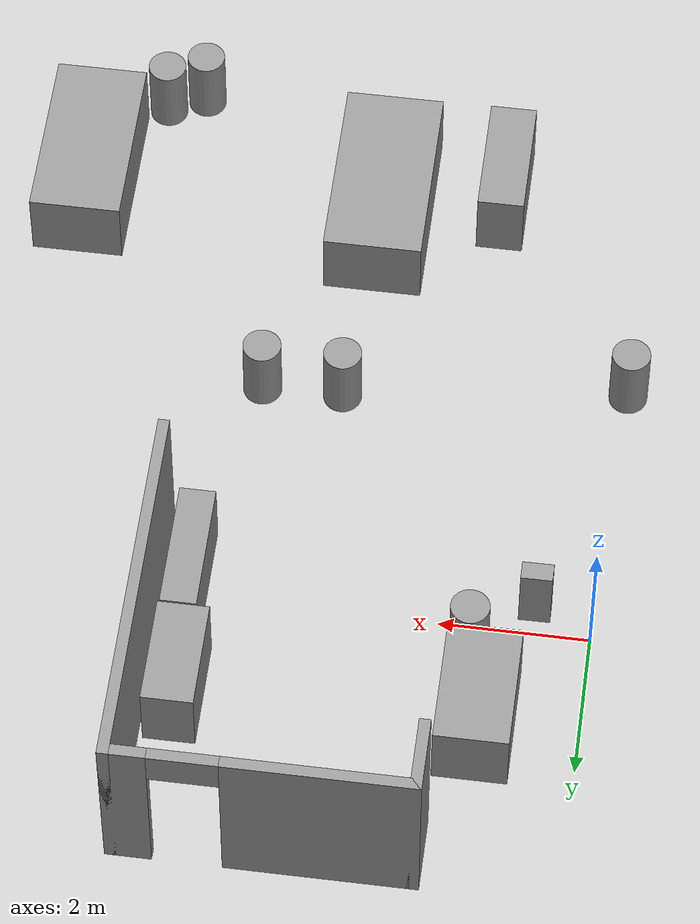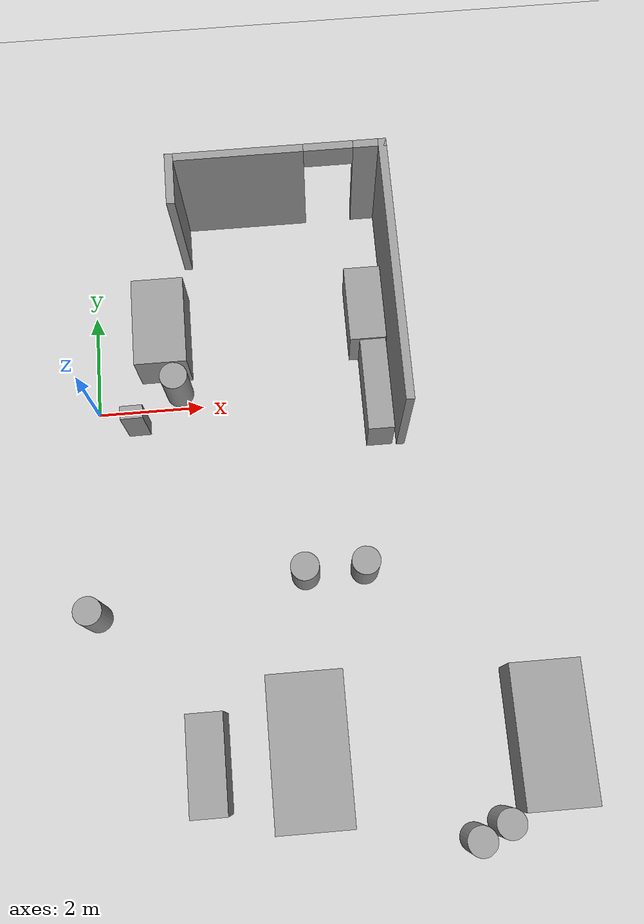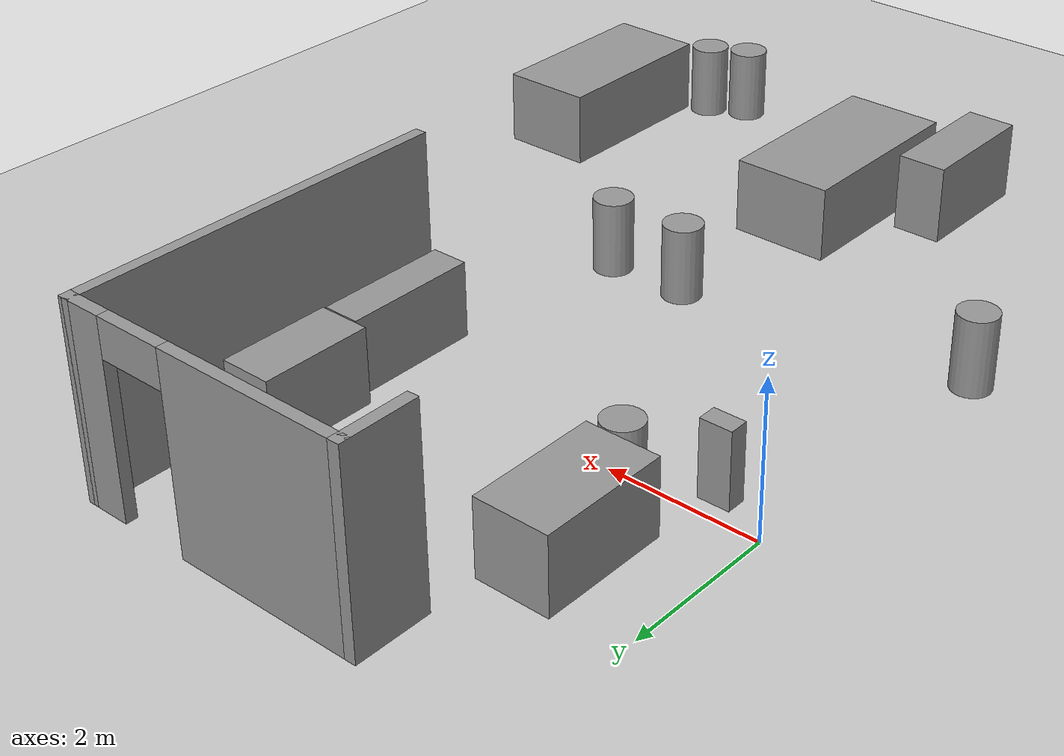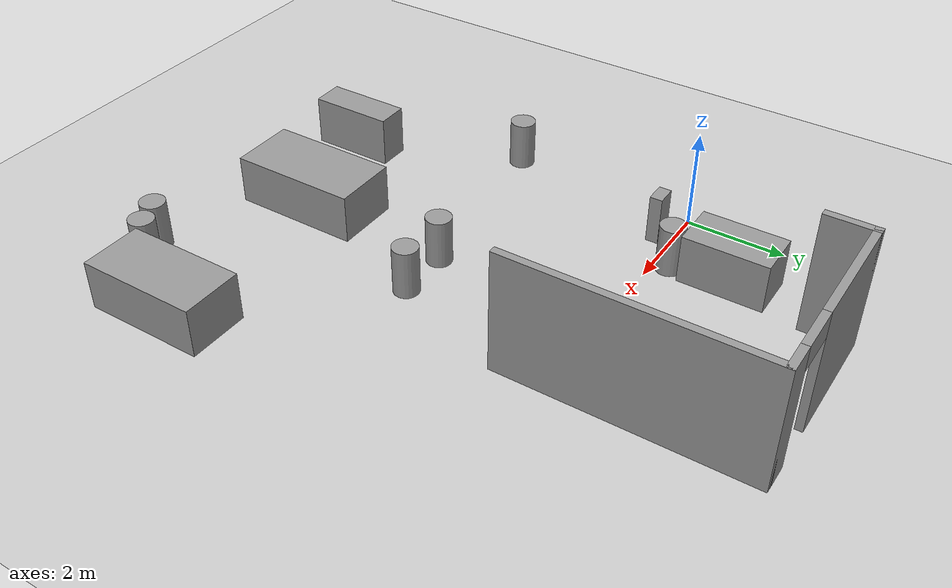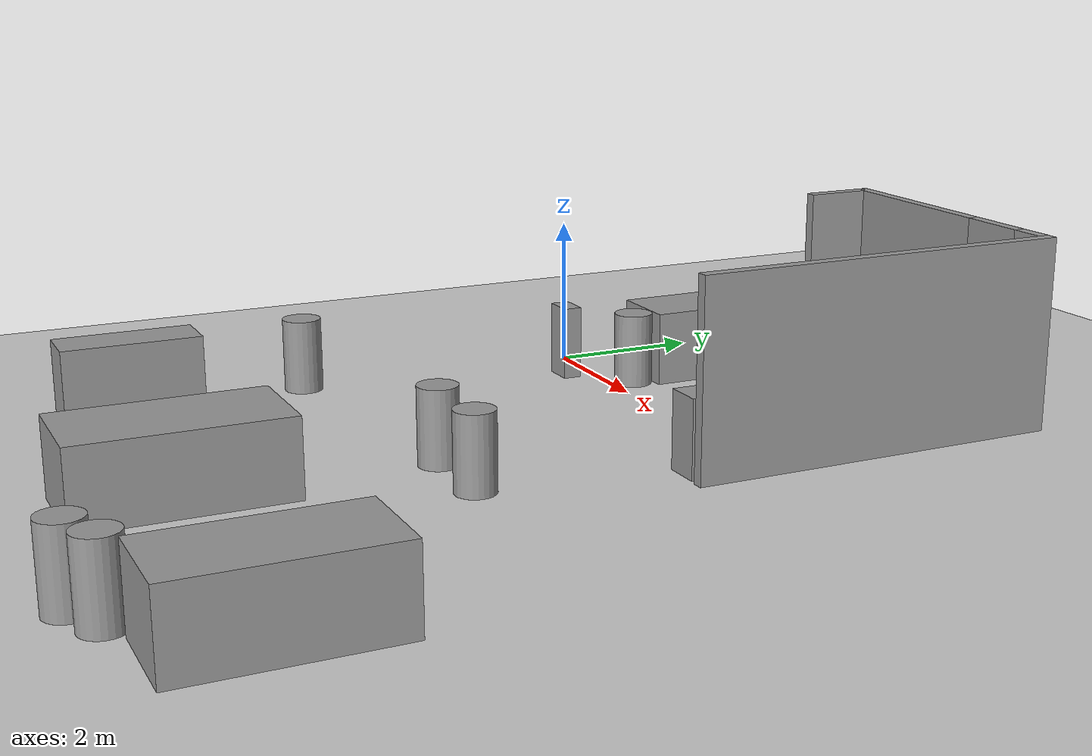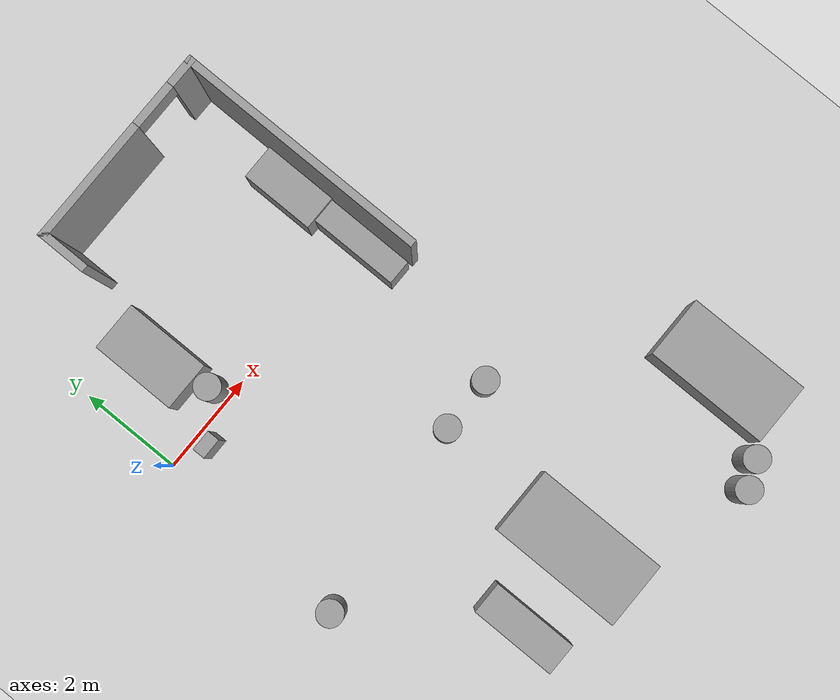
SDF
<sdf version="1.9">
 <world name="default">
  <model name="ground_plane">
   <static>true</static>
   <link name="link">
    <collision name="collision">
     <geometry><plane><normal>0 0 1</normal><size>100 100</size></plane></geometry>
     <surface><friction><ode><mu>100</mu><mu2>50</mu2></ode></friction></surface>
    </collision>
    <visual name="visual">
     <cast_shadows>false</cast_shadows>
     <geometry><plane><normal>0 0 1</normal><size>100 100</size></plane></geometry>
     <material>
      <script><uri>file://media/materials/scripts/gazebo.material</uri><name>Gazebo/Grey</name></script>
     </material>
    </visual>
   </link>
  </model>
  <model name="cma_L5">
   <pose>3.77502 1.45512 0 0 0 0</pose>
   <link name="Wall_0">
    <collision name="Wall_0_Collision">
     <geometry><box><size>1 0.14999999999999999 2.5</size></box></geometry>
     <pose>0 0 1.25 0 0 0</pose>
    </collision>
    <visual name="Wall_0_Visual">
     <pose>0 0 1.25 0 0 0</pose>
     <geometry><box><size>1 0.14999999999999999 2.5</size></box></geometry>
     <material>
      <script><uri>file://media/materials/scripts/gazebo.material</uri><name>Gazebo/Grey</name></script>
      <ambient>1 1 1 1</ambient>
     </material>
    </visual>
    <pose>-1.925 2 0 0 0 1.5708</pose>
   </link>
   <link name="Wall_1">
    <pose>0 2.4249999999999998 0 0 0 0</pose>
    <visual name="Wall_1_Visual_0">
     <pose>-0.75249999999999995 0 1.25 0 0 0</pose>
     <geometry><box><size>2.4950000000000001 0.14999999999999999 2.5</size></box></geometry>
     <material>
      <script><uri>file://media/materials/scripts/gazebo.material</uri><name>Gazebo/Grey</name></script>
      <ambient>1 1 1 1</ambient>
     </material>
    </visual>
    <collision name="Wall_1_Collision_0">
     <geometry><box><size>2.4950000000000001 0.14999999999999999 2.5</size></box></geometry>
     <pose>-0.75249999999999995 0 1.25 0 0 0</pose>
    </collision>
    <visual name="Wall_1_Visual_1">
     <pose>1.6975 0 1.25 0 0 0</pose>
     <geometry><box><size>0.60499999999999998 0.14999999999999999 2.5</size></box></geometry>
     <material>
      <script><uri>file://media/materials/scripts/gazebo.material</uri><name>Gazebo/Grey</name></script>
      <ambient>1 1 1 1</ambient>
     </material>
    </visual>
    <collision name="Wall_1_Collision_1">
     <geometry><box><size>0.60499999999999998 0.14999999999999999 2.5</size></box></geometry>
     <pose>1.6975 0 1.25 0 0 0</pose>
    </collision>
    <visual name="Wall_1_Visual_2">
     <pose>0.94499999999999995 0 2.25 0 0 0</pose>
     <geometry><box><size>0.90000000000000002 0.14999999999999999 0.5</size></box></geometry>
     <material>
      <script><uri>file://media/materials/scripts/gazebo.material</uri><name>Gazebo/Grey</name></script>
      <ambient>1 1 1 1</ambient>
     </material>
    </visual>
    <collision name="Wall_1_Collision_2">
     <geometry><box><size>0.90000000000000002 0.14999999999999999 0.5</size></box></geometry>
     <pose>0.94499999999999995 0 2.25 0 0 0</pose>
    </collision>
   </link>
   <link name="Wall_3">
    <collision name="Wall_3_Collision">
     <geometry><box><size>5 0.14999999999999999 2.5</size></box></geometry>
     <pose>0 0 1.25 0 0 0</pose>
    </collision>
    <visual name="Wall_3_Visual">
     <pose>0 0 1.25 0 0 0</pose>
     <geometry><box><size>5 0.14999999999999999 2.5</size></box></geometry>
     <material>
      <script><uri>file://media/materials/scripts/gazebo.material</uri><name>Gazebo/Grey</name></script>
      <ambient>1 1 1 1</ambient>
     </material>
    </visual>
    <pose>1.925 0 0 0 0 -1.5708</pose>
   </link>
   <static>true</static>
  </model>
  <model name="cma_picador_0">
   <link name="link_2">
    <pose>-0.7258 -1.6910400000000001 0 0 0 0</pose>
    <inertial>
     <mass>0.10473200000000001</mass>
     <inertia>
      <ixx>0.0092790600000000004</ixx>
      <ixy>0</ixy>
      <ixz>0</ixz>
      <iyy>0.010243</iyy>
      <iyz>0</iyz>
      <izz>0.0020667200000000002</izz>
     </inertia>
    </inertial>
    <visual name="visual">
     <geometry><box><size>0.416688 0.25134000000000001 1</size></box></geometry>
     <material>
      <lighting>true</lighting>
      <script><uri>file://media/materials/scripts/gazebo.material</uri><name>Gazebo/Grey</name></script>
      <ambient>0.300000012 0.300000012 0.300000012 1</ambient>
      <diffuse>0.699999988 0.699999988 0.699999988 1</diffuse>
      <specular>0.00999999978 0.00999999978 0.00999999978 1</specular>
      <emissive>0 0 0 1</emissive>
     </material>
    </visual>
    <collision name="collision">
     <geometry><box><size>0.416688 0.25134000000000001 1</size></box></geometry>
     <surface>
      <friction>
       <ode><mu>1</mu><mu2>1</mu2><fdir1>0 0 0</fdir1><slip1>0</slip1><slip2>0</slip2></ode>
       <torsional>
        <coefficient>1</coefficient>
        <patch_radius>0</patch_radius>
        <surface_radius>0</surface_radius>
        <use_patch_radius>true</use_patch_radius>
        <ode><slip>0</slip></ode>
       </torsional>
      </friction>
      <bounce><restitution_coefficient>0</restitution_coefficient><threshold>1000000</threshold></bounce>
      <contact>
       <collide_without_contact>false</collide_without_contact>
       <collide_without_contact_bitmask>1</collide_without_contact_bitmask>
       <collide_bitmask>1</collide_bitmask>
       <ode>
        <soft_cfm>0</soft_cfm>
        <soft_erp>0.20000000000000001</soft_erp>
        <kp>10000000000000</kp>
        <kd>1</kd>
        <max_vel>0.01</max_vel>
        <min_depth>0</min_depth>
       </ode>
       <bullet>
        <split_impulse>true</split_impulse>
        <split_impulse_penetration_threshold>-0.01</split_impulse_penetration_threshold>
        <soft_cfm>0</soft_cfm>
        <soft_erp>0.20000000000000001</soft_erp>
        <kp>10000000000000</kp>
        <kd>1</kd>
       </bullet>
      </contact>
     </surface>
    </collision>
   </link>
   <static>false</static>
   <pose>1.4715100000000001 1.36012 0.50000199999999995 3.999999999999999e-06 3.9999999999999998e-06 0.0092859999999999991</pose>
  </model>
  <model name="cma_cesto">
   <link name="link_1">
    <pose>-0.32965899999999998 -1.55494 0 0 0 0</pose>
    <inertial>
     <mass>0.267897</mass>
     <inertia>
      <ixx>0.026810199999999999</ixx>
      <ixy>0</ixy>
      <ixz>0</ixz>
      <iyy>0.026810199999999999</iyy>
      <iyz>0</iyz>
      <izz>0.0089711099999999992</izz>
     </inertia>
    </inertial>
    <visual name="visual">
     <geometry><cylinder><radius>0.25879200000000002</radius><length>1</length></cylinder></geometry>
     <material>
      <lighting>true</lighting>
      <script><uri>file://media/materials/scripts/gazebo.material</uri><name>Gazebo/Grey</name></script>
      <ambient>0.300000012 0.300000012 0.300000012 1</ambient>
      <diffuse>0.699999988 0.699999988 0.699999988 1</diffuse>
      <specular>0.00999999978 0.00999999978 0.00999999978 1</specular>
      <emissive>0 0 0 1</emissive>
     </material>
    </visual>
    <collision name="collision">
     <geometry><cylinder><radius>0.25879200000000002</radius><length>1</length></cylinder></geometry>
     <surface>
      <friction>
       <ode><mu>1</mu><mu2>1</mu2><fdir1>0 0 0</fdir1><slip1>0</slip1><slip2>0</slip2></ode>
       <torsional>
        <coefficient>1</coefficient>
        <patch_radius>0</patch_radius>
        <surface_radius>0</surface_radius>
        <use_patch_radius>true</use_patch_radius>
        <ode><slip>0</slip></ode>
       </torsional>
      </friction>
      <bounce><restitution_coefficient>0</restitution_coefficient><threshold>1000000</threshold></bounce>
      <contact>
       <collide_without_contact>false</collide_without_contact>
       <collide_without_contact_bitmask>1</collide_without_contact_bitmask>
       <collide_bitmask>1</collide_bitmask>
       <ode>
        <soft_cfm>0</soft_cfm>
        <soft_erp>0.20000000000000001</soft_erp>
        <kp>10000000000000</kp>
        <kd>1</kd>
        <max_vel>0.01</max_vel>
        <min_depth>0</min_depth>
       </ode>
       <bullet>
        <split_impulse>true</split_impulse>
        <split_impulse_penetration_threshold>-0.01</split_impulse_penetration_threshold>
        <soft_cfm>0</soft_cfm>
        <soft_erp>0.20000000000000001</soft_erp>
        <kp>10000000000000</kp>
        <kd>1</kd>
       </bullet>
      </contact>
     </surface>
    </collision>
   </link>
   <static>false</static>
   <pose>1.9109700000000001 1.85863 0.499998 0 0 -0.013204999999999998</pose>
  </model>
  <model name="cma_sofa_2_lugares">
   <link name="link_0">
    <pose>-0.034013000000000002 -0.039828000000000002 0 0 0 0</pose>
    <inertial>
     <mass>1.6607099999999999</mass>
     <inertia>
      <ixx>0.53818299999999997</ixx>
      <ixy>0</ixy>
      <ixz>0</ixz>
      <iyy>0.27051900000000001</iyy>
      <iyz>0</iyz>
      <izz>0.53191500000000003</izz>
     </inertia>
    </inertial>
    <visual name="visual">
     <geometry><box><size>0.97714699999999999 1.6996800000000001 1</size></box></geometry>
     <material>
      <lighting>true</lighting>
      <script><uri>file://media/materials/scripts/gazebo.material</uri><name>Gazebo/Grey</name></script>
      <ambient>0.300000012 0.300000012 0.300000012 1</ambient>
      <diffuse>0.699999988 0.699999988 0.699999988 1</diffuse>
      <specular>0.00999999978 0.00999999978 0.00999999978 1</specular>
      <emissive>0 0 0 1</emissive>
     </material>
    </visual>
    <collision name="collision">
     <geometry><box><size>0.97714699999999999 1.6996800000000001 1</size></box></geometry>
     <surface>
      <friction>
       <ode><mu>1</mu><mu2>1</mu2><fdir1>0 0 0</fdir1><slip1>0</slip1><slip2>0</slip2></ode>
       <torsional>
        <coefficient>1</coefficient>
        <patch_radius>0</patch_radius>
        <surface_radius>0</surface_radius>
        <use_patch_radius>true</use_patch_radius>
        <ode><slip>0</slip></ode>
       </torsional>
      </friction>
      <bounce><restitution_coefficient>0</restitution_coefficient><threshold>1000000</threshold></bounce>
      <contact>
       <collide_without_contact>false</collide_without_contact>
       <collide_without_contact_bitmask>1</collide_without_contact_bitmask>
       <collide_bitmask>1</collide_bitmask>
       <ode>
        <soft_cfm>0</soft_cfm>
        <soft_erp>0.20000000000000001</soft_erp>
        <kp>10000000000000</kp>
        <kd>1</kd>
        <max_vel>0.01</max_vel>
        <min_depth>0</min_depth>
       </ode>
       <bullet>
        <split_impulse>true</split_impulse>
        <split_impulse_penetration_threshold>-0.01</split_impulse_penetration_threshold>
        <soft_cfm>0</soft_cfm>
        <soft_erp>0.20000000000000001</soft_erp>
        <kp>10000000000000</kp>
        <kd>1</kd>
       </bullet>
      </contact>
     </surface>
    </collision>
   </link>
   <static>false</static>
   <pose>1.36467 1.47295 0.499998 3.999999999999999e-06 -9.9999999999999974e-07 5.5999999999999999e-05</pose>
  </model>
  <model name="cma_sofa_ch2">
   <link name="link_0">
    <pose>7.5415200000000002 -9.0606100000000005 0.5 0 0 0</pose>
    <inertial>
     <mass>3.05287</mass>
     <inertia>
      <ixx>1.79053</ixx>
      <ixy>0</ixy>
      <ixz>0</ixz>
      <iyy>0.64708900000000003</iyy>
      <iyz>0</iyz>
      <izz>1.9288099999999999</izz>
     </inertia>
    </inertial>
    <visual name="visual">
     <geometry><box><size>1.2423500000000001 2.45729 1</size></box></geometry>
     <material>
      <lighting>true</lighting>
      <script><uri>file://media/materials/scripts/gazebo.material</uri><name>Gazebo/Grey</name></script>
      <ambient>0.300000012 0.300000012 0.300000012 1</ambient>
      <diffuse>0.699999988 0.699999988 0.699999988 1</diffuse>
      <specular>0.00999999978 0.00999999978 0.00999999978 1</specular>
      <emissive>0 0 0 1</emissive>
     </material>
    </visual>
    <collision name="collision">
     <geometry><box><size>1.2423500000000001 2.45729 1</size></box></geometry>
     <surface>
      <friction>
       <ode><mu>1</mu><mu2>1</mu2><fdir1>0 0 0</fdir1><slip1>0</slip1><slip2>0</slip2></ode>
       <torsional>
        <coefficient>1</coefficient>
        <patch_radius>0</patch_radius>
        <surface_radius>0</surface_radius>
        <use_patch_radius>true</use_patch_radius>
        <ode><slip>0</slip></ode>
       </torsional>
      </friction>
      <bounce><restitution_coefficient>0</restitution_coefficient><threshold>1000000</threshold></bounce>
      <contact>
       <collide_without_contact>false</collide_without_contact>
       <collide_without_contact_bitmask>1</collide_without_contact_bitmask>
       <collide_bitmask>1</collide_bitmask>
       <ode>
        <soft_cfm>0</soft_cfm>
        <soft_erp>0.20000000000000001</soft_erp>
        <kp>10000000000000</kp>
        <kd>1</kd>
        <max_vel>0.01</max_vel>
        <min_depth>0</min_depth>
       </ode>
       <bullet>
        <split_impulse>true</split_impulse>
        <split_impulse_penetration_threshold>-0.01</split_impulse_penetration_threshold>
        <soft_cfm>0</soft_cfm>
        <soft_erp>0.20000000000000001</soft_erp>
        <kp>10000000000000</kp>
        <kd>1</kd>
       </bullet>
      </contact>
     </surface>
    </collision>
   </link>
   <model name="cma_armarioL">
    <link name="link_0">
     <pose>3.6622599999999998 -6.1673499999999999 0.5 0 0 0</pose>
     <inertial>
      <mass>1.0482100000000001</mass>
      <inertia>
       <ixx>0.33087299999999997</ixx>
       <ixy>0</ixy>
       <ixz>0</ixz>
       <iyy>0.121777</iyy>
       <iyz>0</iyz>
       <izz>0.277949</izz>
      </inertia>
     </inertial>
     <visual name="visual">
      <geometry><box><size>0.62779200000000002 1.6697200000000001 1</size></box></geometry>
      <material>
       <lighting>true</lighting>
       <script><uri>file://media/materials/scripts/gazebo.material</uri><name>Gazebo/Grey</name></script>
       <ambient>0.300000012 0.300000012 0.300000012 1</ambient>
       <diffuse>0.699999988 0.699999988 0.699999988 1</diffuse>
       <specular>0.00999999978 0.00999999978 0.00999999978 1</specular>
       <emissive>0 0 0 1</emissive>
      </material>
     </visual>
     <collision name="collision">
      <geometry><box><size>0.62779200000000002 1.6697200000000001 1</size></box></geometry>
      <surface>
       <friction>
        <ode><mu>1</mu><mu2>1</mu2><fdir1>0 0 0</fdir1><slip1>0</slip1><slip2>0</slip2></ode>
        <torsional>
         <coefficient>1</coefficient>
         <patch_radius>0</patch_radius>
         <surface_radius>0</surface_radius>
         <use_patch_radius>true</use_patch_radius>
         <ode><slip>0</slip></ode>
        </torsional>
       </friction>
       <bounce><restitution_coefficient>0</restitution_coefficient><threshold>1000000</threshold></bounce>
       <contact>
        <collide_without_contact>false</collide_without_contact>
        <collide_without_contact_bitmask>1</collide_without_contact_bitmask>
        <collide_bitmask>1</collide_bitmask>
        <ode>
         <soft_cfm>0</soft_cfm>
         <soft_erp>0.20000000000000001</soft_erp>
         <kp>10000000000000</kp>
         <kd>1</kd>
         <max_vel>0.01</max_vel>
         <min_depth>0</min_depth>
        </ode>
        <bullet>
         <split_impulse>true</split_impulse>
         <split_impulse_penetration_threshold>-0.01</split_impulse_penetration_threshold>
         <soft_cfm>0</soft_cfm>
         <soft_erp>0.20000000000000001</soft_erp>
         <kp>10000000000000</kp>
         <kd>1</kd>
        </bullet>
       </contact>
      </surface>
     </collision>
    </link>
    <static>false</static>
    <pose>-1.9180299999999999 -2.9201100000000002 0.5 0 0 0</pose>
   </model>
   <model name="cma_cesto">
    <link name="link_1">
     <pose>-0.32965899999999998 -1.55494 0 0 0 0</pose>
     <inertial>
      <mass>0.267897</mass>
      <inertia>
       <ixx>0.026810199999999999</ixx>
       <ixy>0</ixy>
       <ixz>0</ixz>
       <iyy>0.026810199999999999</iyy>
       <iyz>0</iyz>
       <izz>0.0089711099999999992</izz>
      </inertia>
     </inertial>
     <visual name="visual">
      <geometry><cylinder><radius>0.25879200000000002</radius><length>1</length></cylinder></geometry>
      <material>
       <lighting>true</lighting>
       <script><uri>file://media/materials/scripts/gazebo.material</uri><name>Gazebo/Grey</name></script>
       <ambient>0.300000012 0.300000012 0.300000012 1</ambient>
       <diffuse>0.699999988 0.699999988 0.699999988 1</diffuse>
       <specular>0.00999999978 0.00999999978 0.00999999978 1</specular>
       <emissive>0 0 0 1</emissive>
      </material>
     </visual>
     <collision name="collision">
      <geometry><cylinder><radius>0.25879200000000002</radius><length>1</length></cylinder></geometry>
      <surface>
       <friction>
        <ode><mu>1</mu><mu2>1</mu2><fdir1>0 0 0</fdir1><slip1>0</slip1><slip2>0</slip2></ode>
        <torsional>
         <coefficient>1</coefficient>
         <patch_radius>0</patch_radius>
         <surface_radius>0</surface_radius>
         <use_patch_radius>true</use_patch_radius>
         <ode><slip>0</slip></ode>
        </torsional>
       </friction>
       <bounce><restitution_coefficient>0</restitution_coefficient><threshold>1000000</threshold></bounce>
       <contact>
        <collide_without_contact>false</collide_without_contact>
        <collide_without_contact_bitmask>1</collide_without_contact_bitmask>
        <collide_bitmask>1</collide_bitmask>
        <ode>
         <soft_cfm>0</soft_cfm>
         <soft_erp>0.20000000000000001</soft_erp>
         <kp>10000000000000</kp>
         <kd>1</kd>
         <max_vel>0.01</max_vel>
         <min_depth>0</min_depth>
        </ode>
        <bullet>
         <split_impulse>true</split_impulse>
         <split_impulse_penetration_threshold>-0.01</split_impulse_penetration_threshold>
         <soft_cfm>0</soft_cfm>
         <soft_erp>0.20000000000000001</soft_erp>
         <kp>10000000000000</kp>
         <kd>1</kd>
        </bullet>
       </contact>
      </surface>
     </collision>
    </link>
    <static>false</static>
    <pose>6.9793500000000002 -8.8850899999999999 0.5 0 0 0</pose>
   </model>
   <model name="cma_cesto_0">
    <link name="link_1">
     <pose>-0.32965899999999998 -1.55494 0 0 0 0</pose>
     <inertial>
      <mass>0.267897</mass>
      <inertia>
       <ixx>0.026810199999999999</ixx>
       <ixy>0</ixy>
       <ixz>0</ixz>
       <iyy>0.026810199999999999</iyy>
       <iyz>0</iyz>
       <izz>0.0089711099999999992</izz>
      </inertia>
     </inertial>
     <visual name="visual">
      <geometry><cylinder><radius>0.25879200000000002</radius><length>1</length></cylinder></geometry>
      <material>
       <lighting>true</lighting>
       <script><uri>file://media/materials/scripts/gazebo.material</uri><name>Gazebo/Grey</name></script>
       <ambient>0.300000012 0.300000012 0.300000012 1</ambient>
       <diffuse>0.699999988 0.699999988 0.699999988 1</diffuse>
       <specular>0.00999999978 0.00999999978 0.00999999978 1</specular>
       <emissive>0 0 0 1</emissive>
      </material>
     </visual>
     <collision name="collision">
      <geometry><cylinder><radius>0.25879200000000002</radius><length>1</length></cylinder></geometry>
      <surface>
       <friction>
        <ode><mu>1</mu><mu2>1</mu2><fdir1>0 0 0</fdir1><slip1>0</slip1><slip2>0</slip2></ode>
        <torsional>
         <coefficient>1</coefficient>
         <patch_radius>0</patch_radius>
         <surface_radius>0</surface_radius>
         <use_patch_radius>true</use_patch_radius>
         <ode><slip>0</slip></ode>
        </torsional>
       </friction>
       <bounce><restitution_coefficient>0</restitution_coefficient><threshold>1000000</threshold></bounce>
       <contact>
        <collide_without_contact>false</collide_without_contact>
        <collide_without_contact_bitmask>1</collide_without_contact_bitmask>
        <collide_bitmask>1</collide_bitmask>
        <ode>
         <soft_cfm>0</soft_cfm>
         <soft_erp>0.20000000000000001</soft_erp>
         <kp>10000000000000</kp>
         <kd>1</kd>
         <max_vel>0.01</max_vel>
         <min_depth>0</min_depth>
        </ode>
        <bullet>
         <split_impulse>true</split_impulse>
         <split_impulse_penetration_threshold>-0.01</split_impulse_penetration_threshold>
         <soft_cfm>0</soft_cfm>
         <soft_erp>0.20000000000000001</soft_erp>
         <kp>10000000000000</kp>
         <kd>1</kd>
        </bullet>
       </contact>
      </surface>
     </collision>
    </link>
    <static>false</static>
    <pose>6.4663000000000004 -9.1192200000000003 0.5 0 0 0</pose>
   </model>
   <model name="cma_cesto_1">
    <link name="link_1">
     <pose>-0.32965899999999998 -1.55494 0 0 0 0</pose>
     <inertial>
      <mass>0.267897</mass>
      <inertia>
       <ixx>0.026810199999999999</ixx>
       <ixy>0</ixy>
       <ixz>0</ixz>
       <iyy>0.026810199999999999</iyy>
       <iyz>0</iyz>
       <izz>0.0089711099999999992</izz>
      </inertia>
     </inertial>
     <visual name="visual">
      <geometry><cylinder><radius>0.25879200000000002</radius><length>1</length></cylinder></geometry>
      <material>
       <lighting>true</lighting>
       <script><uri>file://media/materials/scripts/gazebo.material</uri><name>Gazebo/Grey</name></script>
       <ambient>0.300000012 0.300000012 0.300000012 1</ambient>
       <diffuse>0.699999988 0.699999988 0.699999988 1</diffuse>
       <specular>0.00999999978 0.00999999978 0.00999999978 1</specular>
       <emissive>0 0 0 1</emissive>
      </material>
     </visual>
     <collision name="collision">
      <geometry><cylinder><radius>0.25879200000000002</radius><length>1</length></cylinder></geometry>
      <surface>
       <friction>
        <ode><mu>1</mu><mu2>1</mu2><fdir1>0 0 0</fdir1><slip1>0</slip1><slip2>0</slip2></ode>
        <torsional>
         <coefficient>1</coefficient>
         <patch_radius>0</patch_radius>
         <surface_radius>0</surface_radius>
         <use_patch_radius>true</use_patch_radius>
         <ode><slip>0</slip></ode>
        </torsional>
       </friction>
       <bounce><restitution_coefficient>0</restitution_coefficient><threshold>1000000</threshold></bounce>
       <contact>
        <collide_without_contact>false</collide_without_contact>
        <collide_without_contact_bitmask>1</collide_without_contact_bitmask>
        <collide_bitmask>1</collide_bitmask>
        <ode>
         <soft_cfm>0</soft_cfm>
         <soft_erp>0.20000000000000001</soft_erp>
         <kp>10000000000000</kp>
         <kd>1</kd>
         <max_vel>0.01</max_vel>
         <min_depth>0</min_depth>
        </ode>
        <bullet>
         <split_impulse>true</split_impulse>
         <split_impulse_penetration_threshold>-0.01</split_impulse_penetration_threshold>
         <soft_cfm>0</soft_cfm>
         <soft_erp>0.20000000000000001</soft_erp>
         <kp>10000000000000</kp>
         <kd>1</kd>
        </bullet>
       </contact>
      </surface>
     </collision>
    </link>
    <static>false</static>
    <pose>0.091229000000000005 -4.78918 0.5 0 0 0</pose>
   </model>
   <model name="cma_cesto_2">
    <link name="link_1">
     <pose>-0.32965899999999998 -1.55494 0 0 0 0</pose>
     <inertial>
      <mass>0.267897</mass>
      <inertia>
       <ixx>0.026810199999999999</ixx>
       <ixy>0</ixy>
       <ixz>0</ixz>
       <iyy>0.026810199999999999</iyy>
       <iyz>0</iyz>
       <izz>0.0089711099999999992</izz>
      </inertia>
     </inertial>
     <visual name="visual">
      <geometry><cylinder><radius>0.25879200000000002</radius><length>1</length></cylinder></geometry>
      <material>
       <lighting>true</lighting>
       <script><uri>file://media/materials/scripts/gazebo.material</uri><name>Gazebo/Grey</name></script>
       <ambient>0.300000012 0.300000012 0.300000012 1</ambient>
       <diffuse>0.699999988 0.699999988 0.699999988 1</diffuse>
       <specular>0.00999999978 0.00999999978 0.00999999978 1</specular>
       <emissive>0 0 0 1</emissive>
      </material>
     </visual>
     <collision name="collision">
      <geometry><cylinder><radius>0.25879200000000002</radius><length>1</length></cylinder></geometry>
      <surface>
       <friction>
        <ode><mu>1</mu><mu2>1</mu2><fdir1>0 0 0</fdir1><slip1>0</slip1><slip2>0</slip2></ode>
        <torsional>
         <coefficient>1</coefficient>
         <patch_radius>0</patch_radius>
         <surface_radius>0</surface_radius>
         <use_patch_radius>true</use_patch_radius>
         <ode><slip>0</slip></ode>
        </torsional>
       </friction>
       <bounce><restitution_coefficient>0</restitution_coefficient><threshold>1000000</threshold></bounce>
       <contact>
        <collide_without_contact>false</collide_without_contact>
        <collide_without_contact_bitmask>1</collide_without_contact_bitmask>
        <collide_bitmask>1</collide_bitmask>
        <ode>
         <soft_cfm>0</soft_cfm>
         <soft_erp>0.20000000000000001</soft_erp>
         <kp>10000000000000</kp>
         <kd>1</kd>
         <max_vel>0.01</max_vel>
         <min_depth>0</min_depth>
        </ode>
        <bullet>
         <split_impulse>true</split_impulse>
         <split_impulse_penetration_threshold>-0.01</split_impulse_penetration_threshold>
         <soft_cfm>0</soft_cfm>
         <soft_erp>0.20000000000000001</soft_erp>
         <kp>10000000000000</kp>
         <kd>1</kd>
        </bullet>
       </contact>
      </surface>
     </collision>
    </link>
    <static>false</static>
    <pose>5.00434 -4.3001500000000004 0.5 0 0 0</pose>
   </model>
   <model name="cma_cesto_3">
    <link name="link_1">
     <pose>-0.32965899999999998 -1.55494 0 0 0 0</pose>
     <inertial>
      <mass>0.267897</mass>
      <inertia>
       <ixx>0.026810199999999999</ixx>
       <ixy>0</ixy>
       <ixz>0</ixz>
       <iyy>0.026810199999999999</iyy>
       <iyz>0</iyz>
       <izz>0.0089711099999999992</izz>
      </inertia>
     </inertial>
     <visual name="visual">
      <geometry><cylinder><radius>0.25879200000000002</radius><length>1</length></cylinder></geometry>
      <material>
       <lighting>true</lighting>
       <script><uri>file://media/materials/scripts/gazebo.material</uri><name>Gazebo/Grey</name></script>
       <ambient>0.300000012 0.300000012 0.300000012 1</ambient>
       <diffuse>0.699999988 0.699999988 0.699999988 1</diffuse>
       <specular>0.00999999978 0.00999999978 0.00999999978 1</specular>
       <emissive>0 0 0 1</emissive>
      </material>
     </visual>
     <collision name="collision">
      <geometry><cylinder><radius>0.25879200000000002</radius><length>1</length></cylinder></geometry>
      <surface>
       <friction>
        <ode><mu>1</mu><mu2>1</mu2><fdir1>0 0 0</fdir1><slip1>0</slip1><slip2>0</slip2></ode>
        <torsional>
         <coefficient>1</coefficient>
         <patch_radius>0</patch_radius>
         <surface_radius>0</surface_radius>
         <use_patch_radius>true</use_patch_radius>
         <ode><slip>0</slip></ode>
        </torsional>
       </friction>
       <bounce><restitution_coefficient>0</restitution_coefficient><threshold>1000000</threshold></bounce>
       <contact>
        <collide_without_contact>false</collide_without_contact>
        <collide_without_contact_bitmask>1</collide_without_contact_bitmask>
        <collide_bitmask>1</collide_bitmask>
        <ode>
         <soft_cfm>0</soft_cfm>
         <soft_erp>0.20000000000000001</soft_erp>
         <kp>10000000000000</kp>
         <kd>1</kd>
         <max_vel>0.01</max_vel>
         <min_depth>0</min_depth>
        </ode>
        <bullet>
         <split_impulse>true</split_impulse>
         <split_impulse_penetration_threshold>-0.01</split_impulse_penetration_threshold>
         <soft_cfm>0</soft_cfm>
         <soft_erp>0.20000000000000001</soft_erp>
         <kp>10000000000000</kp>
         <kd>1</kd>
        </bullet>
       </contact>
      </surface>
     </collision>
    </link>
    <static>false</static>
    <pose>3.9176799999999998 -4.3154000000000003 0.5 0 0 0</pose>
   </model>
   <model name="cma_sofa_ch1">
    <link name="link_0">
     <pose>-3.9999999999999998e-06 5.0000000000000004e-06 0 0 0 0</pose>
     <inertial>
      <mass>3.5119199999999999</mass>
      <inertia>
       <ixx>2.3083100000000001</ixx>
       <ixy>0</ixy>
       <ixz>0</ixz>
       <iyy>0.81674599999999997</iyy>
       <iyz>0</iyz>
       <izz>2.5397400000000001</izz>
      </inertia>
     </inertial>
     <visual name="visual">
      <geometry><box><size>1.33823 2.62439 1</size></box></geometry>
      <material>
       <lighting>true</lighting>
       <script><uri>file://media/materials/scripts/gazebo.material</uri><name>Gazebo/Grey</name></script>
       <ambient>0.300000012 0.300000012 0.300000012 1</ambient>
       <diffuse>0.699999988 0.699999988 0.699999988 1</diffuse>
       <specular>0.00999999978 0.00999999978 0.00999999978 1</specular>
       <emissive>0 0 0 1</emissive>
      </material>
     </visual>
     <collision name="collision">
      <geometry><box><size>1.33823 2.62439 1</size></box></geometry>
      <surface>
       <friction>
        <ode><mu>1</mu><mu2>1</mu2><fdir1>0 0 0</fdir1><slip1>0</slip1><slip2>0</slip2></ode>
        <torsional>
         <coefficient>1</coefficient>
         <patch_radius>0</patch_radius>
         <surface_radius>0</surface_radius>
         <use_patch_radius>true</use_patch_radius>
         <ode><slip>0</slip></ode>
        </torsional>
       </friction>
       <bounce><restitution_coefficient>0</restitution_coefficient><threshold>1000000</threshold></bounce>
       <contact>
        <collide_without_contact>false</collide_without_contact>
        <collide_without_contact_bitmask>1</collide_without_contact_bitmask>
        <collide_bitmask>1</collide_bitmask>
        <ode>
         <soft_cfm>0</soft_cfm>
         <soft_erp>0.20000000000000001</soft_erp>
         <kp>10000000000000</kp>
         <kd>1</kd>
         <max_vel>0.01</max_vel>
         <min_depth>0</min_depth>
        </ode>
        <bullet>
         <split_impulse>true</split_impulse>
         <split_impulse_penetration_threshold>-0.01</split_impulse_penetration_threshold>
         <soft_cfm>0</soft_cfm>
         <soft_erp>0.20000000000000001</soft_erp>
         <kp>10000000000000</kp>
         <kd>1</kd>
        </bullet>
       </contact>
      </surface>
     </collision>
    </link>
    <static>false</static>
    <pose>3.4236 -8.9981600000000004 0.5 0 0 0</pose>
   </model>
   <static>false</static>
   <pose>0.11720999999999999 2.42164 0 0 0 0</pose>
  </model>
  <model name="cma_geladeira">
   <link name="link_2">
    <pose>3.0000000000000001e-06 -3.9999999999999998e-06 0 0 0 0</pose>
    <inertial>
     <mass>0.994085</mass>
     <inertia>
      <ixx>0.258405</ixx>
      <ixy>0</ixy>
      <ixz>0</ixz>
      <iyy>0.12146800000000001</iyy>
      <iyz>0</iyz>
      <izz>0.21419199999999999</izz>
     </inertia>
    </inertial>
    <visual name="visual">
     <geometry><box><size>0.68284400000000001 1.4557899999999999 1</size></box></geometry>
     <material>
      <lighting>true</lighting>
      <script><uri>file://media/materials/scripts/gazebo.material</uri><name>Gazebo/Grey</name></script>
      <ambient>0.300000012 0.300000012 0.300000012 1</ambient>
      <diffuse>0.699999988 0.699999988 0.699999988 1</diffuse>
      <specular>0.00999999978 0.00999999978 0.00999999978 1</specular>
      <emissive>0 0 0 1</emissive>
     </material>
    </visual>
    <collision name="collision">
     <geometry><box><size>0.68284400000000001 1.4557899999999999 1</size></box></geometry>
     <surface>
      <friction>
       <ode><mu>1</mu><mu2>1</mu2><fdir1>0 0 0</fdir1><slip1>0</slip1><slip2>0</slip2></ode>
       <torsional>
        <coefficient>1</coefficient>
        <patch_radius>0</patch_radius>
        <surface_radius>0</surface_radius>
        <use_patch_radius>true</use_patch_radius>
        <ode><slip>0</slip></ode>
       </torsional>
      </friction>
      <bounce><restitution_coefficient>0</restitution_coefficient><threshold>1000000</threshold></bounce>
      <contact>
       <collide_without_contact>false</collide_without_contact>
       <collide_without_contact_bitmask>1</collide_without_contact_bitmask>
       <collide_bitmask>1</collide_bitmask>
       <ode>
        <soft_cfm>0</soft_cfm>
        <soft_erp>0.20000000000000001</soft_erp>
        <kp>10000000000000</kp>
        <kd>1</kd>
        <max_vel>0.01</max_vel>
        <min_depth>0</min_depth>
       </ode>
       <bullet>
        <split_impulse>true</split_impulse>
        <split_impulse_penetration_threshold>-0.01</split_impulse_penetration_threshold>
        <soft_cfm>0</soft_cfm>
        <soft_erp>0.20000000000000001</soft_erp>
        <kp>10000000000000</kp>
        <kd>1</kd>
       </bullet>
      </contact>
     </surface>
    </collision>
   </link>
   <static>false</static>
   <pose>5.2195799999999997 1.4771700000000001 0.5 0 0 6.0000000000000002e-06</pose>
  </model>
  <model name="cma_armario_coz_190x40cm">
   <link name="link_3">
    <pose>-3.0000000000000001e-06 9.9999999999999995e-07 0 0 0 0</pose>
    <inertial>
     <mass>0.84861799999999998</mass>
     <inertia>
      <ixx>0.28876000000000002</ixx>
      <ixy>0</ixy>
      <ixz>0</ixz>
      <iyy>0.087235900000000005</iyy>
      <iyz>0</iyz>
      <izz>0.23455899999999999</izz>
     </inertia>
    </inertial>
    <visual name="visual">
     <geometry><box><size>0.48330099999999998 1.7559199999999999 1</size></box></geometry>
     <material>
      <lighting>true</lighting>
      <script><uri>file://media/materials/scripts/gazebo.material</uri><name>Gazebo/Grey</name></script>
      <ambient>0.300000012 0.300000012 0.300000012 1</ambient>
      <diffuse>0.699999988 0.699999988 0.699999988 1</diffuse>
      <specular>0.00999999978 0.00999999978 0.00999999978 1</specular>
      <emissive>0 0 0 1</emissive>
     </material>
    </visual>
    <collision name="collision">
     <geometry><box><size>0.48330099999999998 1.7559199999999999 1</size></box></geometry>
     <surface>
      <friction>
       <ode><mu>1</mu><mu2>1</mu2><fdir1>0 0 0</fdir1><slip1>0</slip1><slip2>0</slip2></ode>
       <torsional>
        <coefficient>1</coefficient>
        <patch_radius>0</patch_radius>
        <surface_radius>0</surface_radius>
        <use_patch_radius>true</use_patch_radius>
        <ode><slip>0</slip></ode>
       </torsional>
      </friction>
      <bounce><restitution_coefficient>0</restitution_coefficient><threshold>1000000</threshold></bounce>
      <contact>
       <collide_without_contact>false</collide_without_contact>
       <collide_without_contact_bitmask>1</collide_without_contact_bitmask>
       <collide_bitmask>1</collide_bitmask>
       <ode>
        <soft_cfm>0</soft_cfm>
        <soft_erp>0.20000000000000001</soft_erp>
        <kp>10000000000000</kp>
        <kd>1</kd>
        <max_vel>0.01</max_vel>
        <min_depth>0</min_depth>
       </ode>
       <bullet>
        <split_impulse>true</split_impulse>
        <split_impulse_penetration_threshold>-0.01</split_impulse_penetration_threshold>
        <soft_cfm>0</soft_cfm>
        <soft_erp>0.20000000000000001</soft_erp>
        <kp>10000000000000</kp>
        <kd>1</kd>
       </bullet>
      </contact>
     </surface>
    </collision>
   </link>
   <static>false</static>
   <pose>5.2976599999999996 -0.147674 0.499998 -3.2311742678886618e-27 7.9999999999999996e-06 -6.0000000000000002e-06</pose>
  </model>
 </world>
</sdf>
